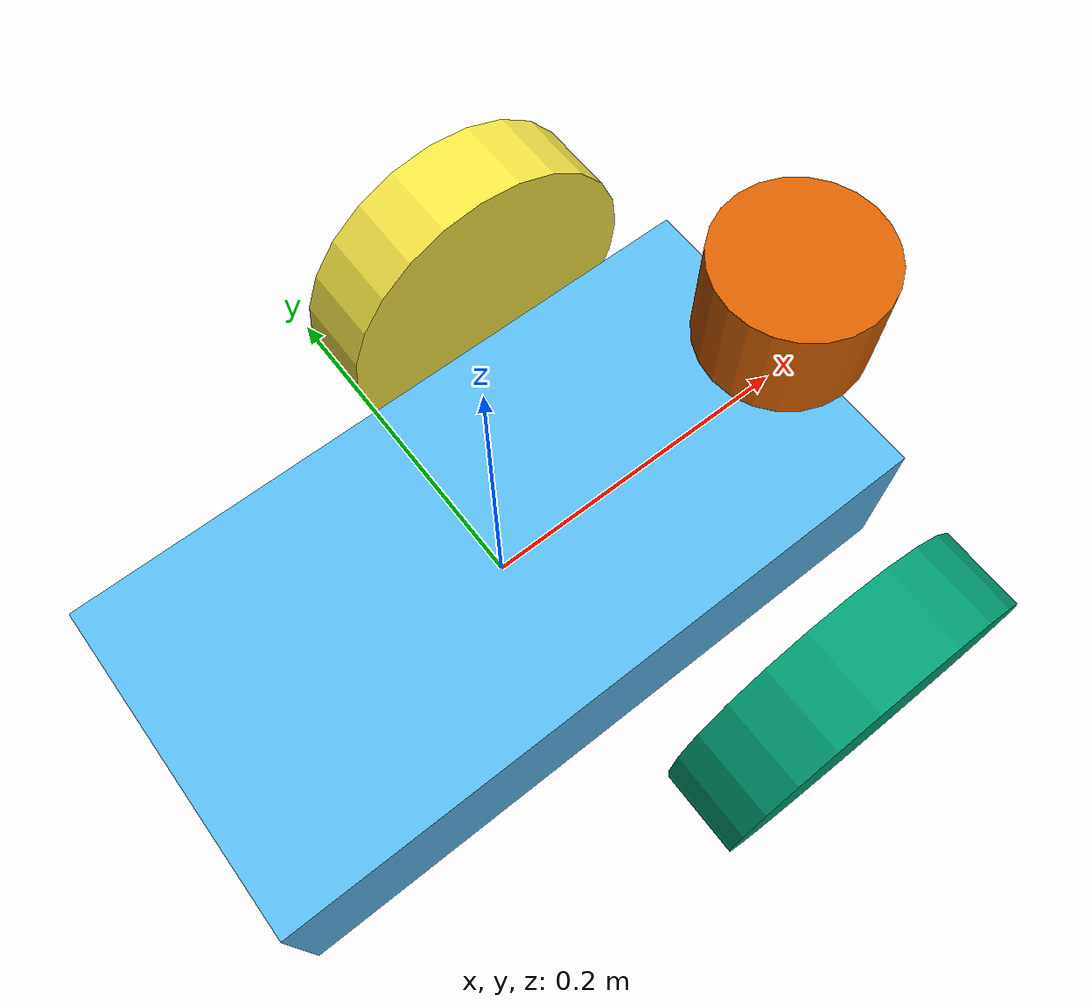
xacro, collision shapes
<?xml version="1.0"?>
<robot name="sample_robot" xmlns:xacro="http://ros.org/wiki/xacro">
	<xacro:include filename="$(find sample_robot_description)/urdf/body/body.urdf.xacro"/>
	<xacro:include filename="$(find sample_robot_description)/urdf/wheel/wheel.urdf.xacro"/>
	<xacro:include filename="$(find sample_robot_description)/urdf/caster/caster.urdf.xacro"/>
	<xacro:include filename="$(find sample_robot_description)/urdf/sensor/hokuyo.urdf.xacro"/>
	<xacro:include filename="$(find sample_robot_description)/urdf/sensor/imu.gazebo.xacro"/>

	<link name="base_footprint"/>

	<xacro:base parent="base_footprint">
		<origin xyz="0 0 0"/>
	</xacro:base>

	<xacro:wheel prefix="right" parent="base_link">
		<origin xyz="0.1 -0.17 0.0" rpy="1.57 0 0" />
		<axis xyz="0 0 -1" />
	</xacro:wheel>

	<xacro:wheel prefix="left" parent="base_link">
		<origin xyz="0.1 0.17 0.0" rpy="-1.57 0 0" />
		<axis xyz="0 0 1" />
	</xacro:wheel>

	<xacro:caster parent="base_link">
		<origin xyz="-0.15 0 -0.05"/>
	</xacro:caster>

	<!-- velodyne -->
	<xacro:include filename="$(find velodyne_description)/urdf/VLP-16.urdf.xacro" />
	<VLP-16 parent="base_link" name="velodyne_front" topic="/front_points_raw" gpu="true" hz="10">
		<origin xyz="0.2 0 0.052" rpy="0 0 0" />
	</VLP-16>

	<!-- ===========  Transmission ============ -->
	<xacro:wheel_trans prefix="right" />
	<xacro:wheel_trans prefix="left" />

	<!-- =============== Gazebo =============== -->
	<gazebo>
		<plugin name="gazebo_ros_control" filename="libgazebo_ros_control.so">
			<robotNamespace>sample_robot</robotNamespace>
		</plugin>
	</gazebo>

	<xacro:imu prefix="imu" parent="base_link" xyz="0 0 0" />

	<xacro:body_gazebo/>
	<xacro:wheel_gazebo prefix="right" />
	<xacro:wheel_gazebo prefix="left" />
	<xacro:caster_gazebo/>
</robot>

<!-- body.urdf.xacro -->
<robot xmlns:xacro="http://ros.org/wiki/xacro">
  <xacro:include filename="$(find sample_robot_description)/urdf/body/body.gazebo.xacro"/>
  <xacro:macro name="base" params="parent *joint_origin">
    <joint name="base_joint" type="fixed">
      <xacro:insert_block name="joint_origin"/>
      <parent link="${parent}"/>
      <child link="base_link"/>
    </joint>

    <link name="base_link">
      <visual>
        <geometry>
          <box size="0.400 0.200 0.100"/>
        </geometry>
      </visual>

      <collision>
        <geometry>
          <box size="0.400 0.200 0.100"/>
        </geometry>
      </collision>

      <inertial>
        <origin xyz="0 0 0"/>
        <mass value="0.6"/>
        <inertia ixx="1e-3" ixy="0" ixz="0" iyy="1e-3" iyz="0" izz="1e-3"/>
      </inertial>
    </link>
  </xacro:macro>
</robot>

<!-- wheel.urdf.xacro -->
<robot xmlns:xacro="http://ros.org/wiki/xacro">
  <xacro:include filename="$(find sample_robot_description)/urdf/wheel/wheel.gazebo.xacro" />
  <xacro:include filename="$(find sample_robot_description)/urdf/wheel/wheel.transmission.xacro" />
  <xacro:macro name="wheel" params="prefix parent *joint_origin *joint_axis">
    <joint name="${prefix}_wheel_joint" type="continuous">
      <xacro:insert_block name="joint_origin" />
      <xacro:insert_block name="joint_axis" />
      <parent link="${parent}" />
      <child link="${prefix}_wheel" />
    </joint>

    <link name="${prefix}_wheel">
      <visual>
        <geometry>
          <cylinder radius="0.1" length="0.05"/>
        </geometry>
      </visual>

      <collision>
        <geometry>
          <cylinder radius="0.1" length="0.05"/>
        </geometry>
      </collision>

      <inertial>
        <origin xyz="0.0 0.0 0.0" />
        <mass value="0.500"/>
        <inertia ixx="0.0013541667" ixy="0" ixz="0" iyy="0.0013541667" iyz="0" izz="0.0025"/>
      </inertial>
    </link>
  </xacro:macro>
</robot>

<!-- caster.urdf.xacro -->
<robot xmlns:xacro="http://ros.org/wiki/xacro">
  <xacro:include filename="$(find sample_robot_description)/urdf/caster/caster.gazebo.xacro"/>
  <xacro:macro name="caster" params="parent *joint_origin">
    <joint name="$caster_joint" type="fixed">
      <xacro:insert_block name="joint_origin" />
      <parent link="${parent}" />
      <child link="caster_link" />
    </joint>

    <link name="caster_link">
      <visual>
        <geometry>
          <sphere radius="0.05"/>
        </geometry>
      </visual>

      <collision>
        <geometry>
          <sphere radius="0.05"/>
        </geometry>
      </collision>

      <inertial>
        <origin xyz="0.0 0 0.0" />
        <mass value="0.50" />
        <inertia ixx="0.0025" ixy="0.0" iyy="0.0025" ixz="0.0" iyz="0.0" izz="0.0025" />
      </inertial>
    </link>
  </xacro:macro>
</robot>

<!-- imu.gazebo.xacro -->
<robot name="sample_robot" xmlns:xacro="http://ros.org/wiki/xacro">
  <xacro:macro name="imu" params="parent prefix xyz">
    <joint name="imu_joint" type="fixed">
      <parent link="${parent}"/>
      <child  link="${prefix}_link"/>
      <origin xyz="${xyz}" rpy="0 0 0"/>
    </joint>
    <link name="${prefix}_link"/>
    <gazebo reference="${prefix}_link">
      <gravity>true</gravity>
      <sensor name="imu_sensor" type="imu">
        <always_on>true</always_on>
        <update_rate>100</update_rate>
        <visualize>true</visualize>
        <topic>data</topic>
        <plugin filename="libgazebo_ros_imu_sensor.so" name="imu_plugin">
          <topicName>${prefix}/data</topicName>
          <bodyName>${prefix}_link</bodyName>
          <updateRateHZ>10.0</updateRateHZ>
          <gaussianNoise>0.0</gaussianNoise>
          <xyzOffset>0 0 0</xyzOffset>
          <rpyOffset>0 0 0</rpyOffset>
          <frameName>${prefix}_link</frameName>
        </plugin>
        <pose>0 0 0 0 0 0</pose>
      </sensor>
    </gazebo>
  </xacro:macro>
</robot>

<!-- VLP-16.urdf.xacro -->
<robot xmlns:xacro="http://www.ros.org/wiki/xacro" name="VLP-16">
  <xacro:property name="M_PI" value="3.1415926535897931" />
  <xacro:macro name="VLP-16" params="*origin is_sim:=true parent:=base_link name:=velodyne tf_prefix:='' topic:=/velodyne_points organize_cloud:=false hz:=10 lasers:=16 samples:=1875 collision_range:=0.3 min_range:=0.0 max_range:=100.0 noise:=0.008 min_angle:=-${M_PI} max_angle:=${M_PI} gpu:=false">

    <joint name="${name}_base_mount_joint" type="fixed">
      <xacro:insert_block name="origin" />
      <parent link="${parent}"/>
      <child link="${name}_base_link"/>
    </joint>

    <link name="${name}_base_link">
      <inertial>
        <mass value="0.83"/>
        <origin xyz="0 0 0.03585"/>
        <inertia ixx="${(0.83 * (3.0*0.0516*0.0516 + 0.0717*0.0717)) / 12.0}" ixy="0" ixz="0"
          iyy="${(0.83 * (3.0*0.0516*0.0516 + 0.0717*0.0717)) / 12.0}" iyz="0"
          izz="${0.5 * 0.83 * (0.0516*0.0516)}"/>
      </inertial>
      <visual>
        <geometry>
          <mesh filename="package://velodyne_description/meshes/VLP16_base_1.dae" />
        </geometry>
      </visual>
      <visual>
        <geometry>
          <mesh filename="package://velodyne_description/meshes/VLP16_base_2.dae" />
        </geometry>
      </visual>
      <collision>
        <origin rpy="0 0 0" xyz="0 0 0.03585"/>
        <geometry>
          <cylinder radius="0.0516" length="0.0717"/>
        </geometry>
      </collision>
    </link>

    <joint name="${name}_base_scan_joint" type="fixed" >
      <origin xyz="0 0 0.0377" rpy="0 0 0" />
      <parent link="${name}_base_link" />
      <child link="${name}"/>
    </joint>

    <link name="${name}">
      <inertial>
        <mass value="0.01"/>
        <origin xyz="0 0 0"/>
        <inertia ixx="1e-7" ixy="0" ixz="0" iyy="1e-7" iyz="0" izz="1e-7"/>
      </inertial>
      <visual>
        <origin xyz="0 0 -0.0377" />
        <geometry>
          <mesh filename="package://velodyne_description/meshes/VLP16_scan.dae" />
        </geometry>
      </visual>
      <collision>
        <geometry>
          <sphere radius="0"/>
        </geometry>
      </collision>
    </link>

    <!-- Gazebo requires the velodyne_gazebo_plugins package -->
    <xacro:if value="${is_sim}">
        <gazebo reference="${name}">
            <xacro:if value="${gpu}">
                <sensor type="gpu_ray" name="${name}-VLP16">
                <pose>0 0 0 0 0 0</pose>
                <visualize>false</visualize>
                <update_rate>${hz}</update_rate>
                <ray>
                    <scan>
                    <horizontal>
                        <samples>${samples}</samples>
                        <resolution>1</resolution>
                        <min_angle>${min_angle}</min_angle>
                        <max_angle>${max_angle}</max_angle>
                    </horizontal>
                    <vertical>
                        <samples>${lasers}</samples>
                        <resolution>1</resolution>
                        <min_angle>-${15.0*M_PI/180.0}</min_angle>
                        <max_angle> ${15.0*M_PI/180.0}</max_angle>
                    </vertical>
                    </scan>
                    <range>
                    <min>${collision_range}</min>
                    <max>${max_range+1}</max>
                    <resolution>0.001</resolution>
                    </range>
                    <noise>
                    <type>gaussian</type>
                    <mean>0.0</mean>
                    <stddev>0.0</stddev>
                    </noise>
                </ray>
                <plugin name="gazebo_ros_laser_controller" filename="libgazebo_ros_velodyne_laser.so">
                    <ros>
                    <namespace>/${name}</namespace>
                    <remapping>~/out:=${topic}</remapping>
                    </ros>
                    <tf_prefix>${tf_prefix}</tf_prefix>
                    <frame_name>${name}</frame_name>
                    <organize_cloud>${organize_cloud}</organize_cloud>
                    <min_range>${min_range}</min_range>
                    <max_range>${max_range}</max_range>
                    <gaussian_noise>${noise}</gaussian_noise>
                </plugin>
                </sensor>
            </xacro:if>
            <xacro:unless value="${gpu}">
                <sensor type="ray" name="${name}-VLP16">
                <pose>0 0 0 0 0 0</pose>
                <visualize>false</visualize>
                <update_rate>${hz}</update_rate>
                <ray>
                    <scan>
                    <horizontal>
                        <samples>${samples}</samples>
                        <resolution>1</resolution>
                        <min_angle>${min_angle}</min_angle>
                        <max_angle>${max_angle}</max_angle>
                    </horizontal>
                    <vertical>
                        <samples>${lasers}</samples>
                        <resolution>1</resolution>
                        <min_angle>-${15.0*M_PI/180.0}</min_angle>
                        <max_angle> ${15.0*M_PI/180.0}</max_angle>
                    </vertical>
                    </scan>
                    <range>
                    <min>${collision_range}</min>
                    <max>${max_range+1}</max>
                    <resolution>0.001</resolution>
                    </range>
                    <noise>
                    <type>gaussian</type>
                    <mean>0.0</mean>
                    <stddev>0.0</stddev>
                    </noise>
                </ray>
                <plugin name="gazebo_ros_laser_controller" filename="libgazebo_ros_velodyne_laser.so">
                    <ros>
                    <namespace>/${name}</namespace>
                    <remapping>~/out:=${topic}</remapping>
                    </ros>
                    <tf_prefix>${tf_prefix}</tf_prefix>
                    <frame_name>${name}</frame_name>
                    <organize_cloud>${organize_cloud}</organize_cloud>
                    <min_range>${min_range}</min_range>
                    <max_range>${max_range}</max_range>
                    <gaussian_noise>${noise}</gaussian_noise>
                </plugin>
                </sensor>
            </xacro:unless>
        </gazebo>
    </xacro:if>

  </xacro:macro>
</robot>
